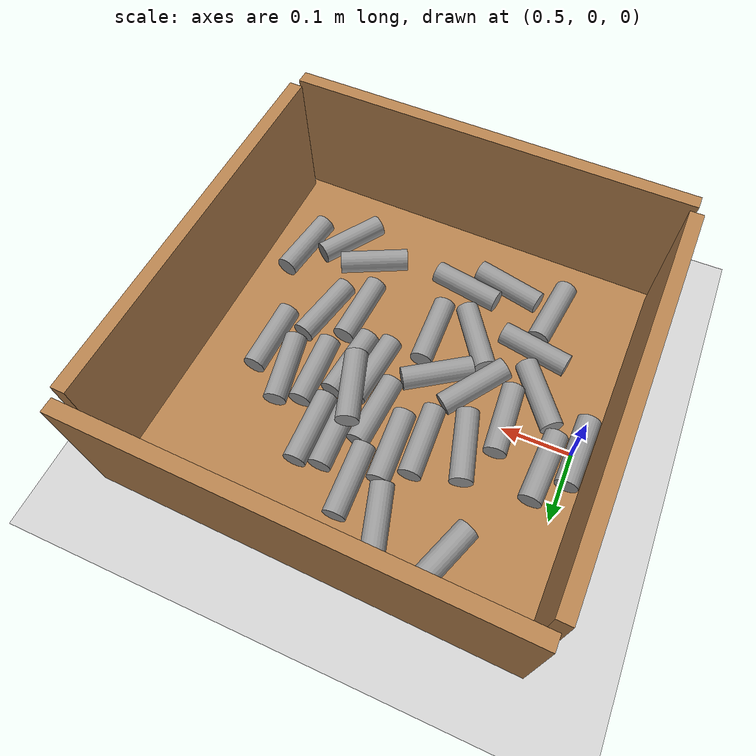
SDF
<sdf version="1.6">
 <world name="default">
  <light name="sun" type="directional">
   <pose>0 0 10 0 -0 0</pose>
   <diffuse>0.8 0.8 0.8 1</diffuse>
   <specular>0.2 0.2 0.2 1</specular>
   <attenuation>
    <range>1000</range>
    <constant>0.9</constant>
    <linear>0.01</linear>
    <quadratic>0.001</quadratic>
   </attenuation>
   <direction>-0.5 0.1 -0.9</direction>
  </light>
  <model name="ground_plane">
   <static>1</static>
   <link name="link">
    <collision name="collision">
     <geometry><plane><normal>0 0 1</normal><size>100 100</size></plane></geometry>
     <surface><friction><ode><mu>100</mu><mu2>50</mu2></ode></friction></surface>
    </collision>
    <visual name="visual">
     <cast_shadows>0</cast_shadows>
     <geometry><plane><normal>0 0 1</normal><size>100 100</size></plane></geometry>
     <material>
      <script><uri>file://media/materials/scripts/gazebo.material</uri><name>Gazebo/Grey</name></script>
     </material>
    </visual>
   </link>
  </model>
  <gravity>0 0 -9.8</gravity>
  <magnetic_field>6e-06 2.3e-05 -4.2e-05</magnetic_field>
  <atmosphere type="adiabatic"/>
  <physics name="default_physics" default="0" type="ode">
   <max_step_size>0.001</max_step_size>
   <real_time_factor>1</real_time_factor>
   <real_time_update_rate>1000</real_time_update_rate>
  </physics>
  <scene><ambient>0.1 0.1 0.1 1</ambient><background>0.7 0.7 0.7 1</background><shadows>1</shadows></scene>
  <audio><device>default</device></audio>
  <spherical_coordinates>
   <surface_model>EARTH_WGS84</surface_model>
   <latitude_deg>0</latitude_deg>
   <longitude_deg>0</longitude_deg>
   <elevation>0</elevation>
   <heading_deg>0</heading_deg>
  </spherical_coordinates>
  <model name="unit_cylinder_clone">
   <pose>0.910398 0.046588 0.033516 1.5706 -1.1739 0.178786</pose>
   <link name="link">
    <inertial>
     <mass>1</mass>
     <inertia><ixx>0.145833</ixx><ixy>0</ixy><ixz>0</ixz><iyy>0.145833</iyy><iyz>0</iyz><izz>0.125</izz></inertia>
    </inertial>
    <collision name="collision">
     <geometry><cylinder><radius>0.0163531</radius><length>0.102086</length></cylinder></geometry>
    </collision>
    <visual name="visual">
     <geometry><cylinder><radius>0.0163531</radius><length>0.102086</length></cylinder></geometry>
     <material>
      <script><name>Gazebo/Grey</name><uri>file://media/materials/scripts/gazebo.material</uri></script>
     </material>
    </visual>
   </link>
  </model>
  <model name="unit_cylinder_clone_0">
   <pose>0.710351 -0.030212 0.03347 1.56807 1.43331 2.15628</pose>
   <link name="link">
    <inertial>
     <mass>1</mass>
     <inertia><ixx>0.145833</ixx><ixy>0</ixy><ixz>0</ixz><iyy>0.145833</iyy><iyz>0</iyz><izz>0.125</izz></inertia>
    </inertial>
    <collision name="collision">
     <geometry><cylinder><radius>0.0163531</radius><length>0.102086</length></cylinder></geometry>
    </collision>
    <visual name="visual">
     <geometry><cylinder><radius>0.0163531</radius><length>0.102086</length></cylinder></geometry>
     <material>
      <script><name>Gazebo/Grey</name><uri>file://media/materials/scripts/gazebo.material</uri></script>
     </material>
    </visual>
   </link>
  </model>
  <model name="unit_cylinder_clone_1">
   <pose>0.72527 0.096784 0.033491 -1.57076 1.1276 0.048239</pose>
   <link name="link">
    <inertial>
     <mass>1</mass>
     <inertia><ixx>0.145833</ixx><ixy>0</ixy><ixz>0</ixz><iyy>0.145833</iyy><iyz>0</iyz><izz>0.125</izz></inertia>
    </inertial>
    <collision name="collision">
     <geometry><cylinder><radius>0.0163531</radius><length>0.102086</length></cylinder></geometry>
    </collision>
    <visual name="visual">
     <geometry><cylinder><radius>0.0163531</radius><length>0.102086</length></cylinder></geometry>
     <material>
      <script><name>Gazebo/Grey</name><uri>file://media/materials/scripts/gazebo.material</uri></script>
     </material>
    </visual>
   </link>
  </model>
  <model name="unit_cylinder_clone_2">
   <pose>0.680806 -0.107065 0.03348 1.57085 0.467899 -2.53252</pose>
   <link name="link">
    <inertial>
     <mass>1</mass>
     <inertia><ixx>0.145833</ixx><ixy>0</ixy><ixz>0</ixz><iyy>0.145833</iyy><iyz>0</iyz><izz>0.125</izz></inertia>
    </inertial>
    <collision name="collision">
     <geometry><cylinder><radius>0.0163531</radius><length>0.102086</length></cylinder></geometry>
    </collision>
    <visual name="visual">
     <geometry><cylinder><radius>0.0163531</radius><length>0.102086</length></cylinder></geometry>
     <material>
      <script><name>Gazebo/Grey</name><uri>file://media/materials/scripts/gazebo.material</uri></script>
     </material>
    </visual>
   </link>
  </model>
  <model name="unit_cylinder_clone_3">
   <pose>0.766483 0.057858 0.033496 1.57072 -1.13541 3.06346</pose>
   <link name="link">
    <inertial>
     <mass>1</mass>
     <inertia><ixx>0.145833</ixx><ixy>0</ixy><ixz>0</ixz><iyy>0.145833</iyy><iyz>0</iyz><izz>0.125</izz></inertia>
    </inertial>
    <collision name="collision">
     <geometry><cylinder><radius>0.0163531</radius><length>0.102086</length></cylinder></geometry>
    </collision>
    <visual name="visual">
     <geometry><cylinder><radius>0.0163531</radius><length>0.102086</length></cylinder></geometry>
     <material>
      <script><name>Gazebo/Grey</name><uri>file://media/materials/scripts/gazebo.material</uri></script>
     </material>
    </visual>
   </link>
  </model>
  <model name="unit_cylinder_clone_4">
   <pose>0.741454 -0.091622 0.033488 1.57077 0.546791 -3.10867</pose>
   <link name="link">
    <inertial>
     <mass>1</mass>
     <inertia><ixx>0.145833</ixx><ixy>0</ixy><ixz>0</ixz><iyy>0.145833</iyy><iyz>0</iyz><izz>0.125</izz></inertia>
    </inertial>
    <collision name="collision">
     <geometry><cylinder><radius>0.0163531</radius><length>0.102086</length></cylinder></geometry>
    </collision>
    <visual name="visual">
     <geometry><cylinder><radius>0.0163531</radius><length>0.102086</length></cylinder></geometry>
     <material>
      <script><name>Gazebo/Grey</name><uri>file://media/materials/scripts/gazebo.material</uri></script>
     </material>
    </visual>
   </link>
  </model>
  <model name="unit_cylinder_clone_2_clone">
   <pose>0.872199 -0.174474 0.033503 1.57108 1.13579 -1.11884</pose>
   <link name="link">
    <inertial>
     <mass>1</mass>
     <inertia><ixx>0.145833</ixx><ixy>0</ixy><ixz>0</ixz><iyy>0.145833</iyy><iyz>0</iyz><izz>0.125</izz></inertia>
    </inertial>
    <collision name="collision">
     <geometry><cylinder><radius>0.0163531</radius><length>0.102086</length></cylinder></geometry>
    </collision>
    <visual name="visual">
     <geometry><cylinder><radius>0.0163531</radius><length>0.102086</length></cylinder></geometry>
     <material>
      <script><name>Gazebo/Grey</name><uri>file://media/materials/scripts/gazebo.material</uri></script>
     </material>
    </visual>
   </link>
  </model>
  <model name="unit_cylinder_clone_2_clone_0">
   <pose>0.665598 -0.210284 0.033476 -1.57415 -1.53547 1.3522</pose>
   <link name="link">
    <inertial>
     <mass>1</mass>
     <inertia><ixx>0.145833</ixx><ixy>0</ixy><ixz>0</ixz><iyy>0.145833</iyy><iyz>0</iyz><izz>0.125</izz></inertia>
    </inertial>
    <collision name="collision">
     <geometry><cylinder><radius>0.0163531</radius><length>0.102086</length></cylinder></geometry>
    </collision>
    <visual name="visual">
     <geometry><cylinder><radius>0.0163531</radius><length>0.102086</length></cylinder></geometry>
     <material>
      <script><name>Gazebo/Grey</name><uri>file://media/materials/scripts/gazebo.material</uri></script>
     </material>
    </visual>
   </link>
  </model>
  <model name="unit_cylinder_clone_2_clone_1">
   <pose>0.59108 -0.189854 0.033467 -1.57076 0.399107 -0.127566</pose>
   <link name="link">
    <inertial>
     <mass>1</mass>
     <inertia><ixx>0.145833</ixx><ixy>0</ixy><ixz>0</ixz><iyy>0.145833</iyy><iyz>0</iyz><izz>0.125</izz></inertia>
    </inertial>
    <collision name="collision">
     <geometry><cylinder><radius>0.0163531</radius><length>0.102086</length></cylinder></geometry>
    </collision>
    <visual name="visual">
     <geometry><cylinder><radius>0.0163531</radius><length>0.102086</length></cylinder></geometry>
     <material>
      <script><name>Gazebo/Grey</name><uri>file://media/materials/scripts/gazebo.material</uri></script>
     </material>
    </visual>
   </link>
  </model>
  <model name="unit_cylinder_clone_2_clone_2">
   <pose>0.65453 -0.026393 0.041509 -1.85841 -0.966312 -0.42838</pose>
   <link name="link">
    <inertial>
     <mass>1</mass>
     <inertia><ixx>0.145833</ixx><ixy>0</ixy><ixz>0</ixz><iyy>0.145833</iyy><iyz>0</iyz><izz>0.125</izz></inertia>
    </inertial>
    <collision name="collision">
     <geometry><cylinder><radius>0.0163531</radius><length>0.102086</length></cylinder></geometry>
    </collision>
    <visual name="visual">
     <geometry><cylinder><radius>0.0163531</radius><length>0.102086</length></cylinder></geometry>
     <material>
      <script><name>Gazebo/Grey</name><uri>file://media/materials/scripts/gazebo.material</uri></script>
     </material>
    </visual>
   </link>
  </model>
  <model name="unit_cylinder_clone_2_clone_3">
   <pose>0.902755 -0.06436 0.033505 -1.57067 -0.066944 -0.225274</pose>
   <link name="link">
    <inertial>
     <mass>1</mass>
     <inertia><ixx>0.145833</ixx><ixy>0</ixy><ixz>0</ixz><iyy>0.145833</iyy><iyz>0</iyz><izz>0.125</izz></inertia>
    </inertial>
    <collision name="collision">
     <geometry><cylinder><radius>0.0163531</radius><length>0.102086</length></cylinder></geometry>
    </collision>
    <visual name="visual">
     <geometry><cylinder><radius>0.0163531</radius><length>0.102086</length></cylinder></geometry>
     <material>
      <script><name>Gazebo/Grey</name><uri>file://media/materials/scripts/gazebo.material</uri></script>
     </material>
    </visual>
   </link>
  </model>
  <model name="unit_cylinder_clone_1_clone">
   <pose>0.59991 0.001231 0.033456 -1.57054 -0.897616 0.074596</pose>
   <link name="link">
    <inertial>
     <mass>1</mass>
     <inertia><ixx>0.145833</ixx><ixy>0</ixy><ixz>0</ixz><iyy>0.145833</iyy><iyz>0</iyz><izz>0.125</izz></inertia>
    </inertial>
    <collision name="collision">
     <geometry><cylinder><radius>0.0163531</radius><length>0.102086</length></cylinder></geometry>
    </collision>
    <visual name="visual">
     <geometry><cylinder><radius>0.0163531</radius><length>0.102086</length></cylinder></geometry>
     <material>
      <script><name>Gazebo/Grey</name><uri>file://media/materials/scripts/gazebo.material</uri></script>
     </material>
    </visual>
   </link>
  </model>
  <model name="unit_cylinder_clone_1_clone_0">
   <pose>0.70104 0.198546 0.033491 1.57081 0.308554 -2.86411</pose>
   <link name="link">
    <inertial>
     <mass>1</mass>
     <inertia><ixx>0.145833</ixx><ixy>0</ixy><ixz>0</ixz><iyy>0.145833</iyy><iyz>0</iyz><izz>0.125</izz></inertia>
    </inertial>
    <collision name="collision">
     <geometry><cylinder><radius>0.0163531</radius><length>0.102086</length></cylinder></geometry>
    </collision>
    <visual name="visual">
     <geometry><cylinder><radius>0.0163531</radius><length>0.102086</length></cylinder></geometry>
     <material>
      <script><name>Gazebo/Grey</name><uri>file://media/materials/scripts/gazebo.material</uri></script>
     </material>
    </visual>
   </link>
  </model>
  <model name="unit_cylinder_clone_1_clone_1">
   <pose>0.836099 0.11491 0.033506 1.57073 0.600433 -3.12526</pose>
   <link name="link">
    <inertial>
     <mass>1</mass>
     <inertia><ixx>0.145833</ixx><ixy>0</ixy><ixz>0</ixz><iyy>0.145833</iyy><iyz>0</iyz><izz>0.125</izz></inertia>
    </inertial>
    <collision name="collision">
     <geometry><cylinder><radius>0.0163531</radius><length>0.102086</length></cylinder></geometry>
    </collision>
    <visual name="visual">
     <geometry><cylinder><radius>0.0163531</radius><length>0.102086</length></cylinder></geometry>
     <material>
      <script><name>Gazebo/Grey</name><uri>file://media/materials/scripts/gazebo.material</uri></script>
     </material>
    </visual>
   </link>
  </model>
  <model name="unit_cylinder_clone_1_clone_1_clone">
   <pose>0.530467 0.045907 0.033464 -1.57077 -0.238967 -0.052242</pose>
   <link name="link">
    <inertial>
     <mass>1</mass>
     <inertia><ixx>0.145833</ixx><ixy>0</ixy><ixz>0</ixz><iyy>0.145833</iyy><iyz>0</iyz><izz>0.125</izz></inertia>
    </inertial>
    <collision name="collision">
     <geometry><cylinder><radius>0.0163531</radius><length>0.102086</length></cylinder></geometry>
    </collision>
    <visual name="visual">
     <geometry><cylinder><radius>0.0163531</radius><length>0.102086</length></cylinder></geometry>
     <material>
      <script><name>Gazebo/Grey</name><uri>file://media/materials/scripts/gazebo.material</uri></script>
     </material>
    </visual>
   </link>
  </model>
  <model name="unit_cylinder_clone_1_clone_1_clone_0">
   <pose>0.690484 0.074177 0.033486 1.57078 0.47303 -3.09489</pose>
   <link name="link">
    <inertial>
     <mass>1</mass>
     <inertia><ixx>0.145833</ixx><ixy>0</ixy><ixz>0</ixz><iyy>0.145833</iyy><iyz>0</iyz><izz>0.125</izz></inertia>
    </inertial>
    <collision name="collision">
     <geometry><cylinder><radius>0.0163531</radius><length>0.102086</length></cylinder></geometry>
    </collision>
    <visual name="visual">
     <geometry><cylinder><radius>0.0163531</radius><length>0.102086</length></cylinder></geometry>
     <material>
      <script><name>Gazebo/Grey</name><uri>file://media/materials/scripts/gazebo.material</uri></script>
     </material>
    </visual>
   </link>
  </model>
  <model name="unit_cylinder_clone_1_clone_1_clone_1">
   <pose>0.795543 -0.001004 0.033449 1.57214 0.815485 3.02594</pose>
   <link name="link">
    <inertial>
     <mass>1</mass>
     <inertia><ixx>0.145833</ixx><ixy>0</ixy><ixz>0</ixz><iyy>0.145833</iyy><iyz>0</iyz><izz>0.125</izz></inertia>
    </inertial>
    <collision name="collision">
     <geometry><cylinder><radius>0.0163531</radius><length>0.102086</length></cylinder></geometry>
    </collision>
    <visual name="visual">
     <geometry><cylinder><radius>0.0163531</radius><length>0.102086</length></cylinder></geometry>
     <material>
      <script><name>Gazebo/Grey</name><uri>file://media/materials/scripts/gazebo.material</uri></script>
     </material>
    </visual>
   </link>
  </model>
  <model name="unit_cylinder_clone_1_clone_1_clone_2">
   <pose>0.596196 -0.121475 0.03346 1.57038 1.03287 1.39315</pose>
   <link name="link">
    <inertial>
     <mass>1</mass>
     <inertia><ixx>0.145833</ixx><ixy>0</ixy><ixz>0</ixz><iyy>0.145833</iyy><iyz>0</iyz><izz>0.125</izz></inertia>
    </inertial>
    <collision name="collision">
     <geometry><cylinder><radius>0.0163531</radius><length>0.102086</length></cylinder></geometry>
    </collision>
    <visual name="visual">
     <geometry><cylinder><radius>0.0163531</radius><length>0.102086</length></cylinder></geometry>
     <material>
      <script><name>Gazebo/Grey</name><uri>file://media/materials/scripts/gazebo.material</uri></script>
     </material>
    </visual>
   </link>
  </model>
  <model name="unit_cylinder_clone_1_clone_1_clone_3">
   <pose>0.49464 0.00796 0.033459 -1.57067 1.38004 -0.025599</pose>
   <link name="link">
    <inertial>
     <mass>1</mass>
     <inertia><ixx>0.145833</ixx><ixy>0</ixy><ixz>0</ixz><iyy>0.145833</iyy><iyz>0</iyz><izz>0.125</izz></inertia>
    </inertial>
    <collision name="collision">
     <geometry><cylinder><radius>0.0163531</radius><length>0.102086</length></cylinder></geometry>
    </collision>
    <visual name="visual">
     <geometry><cylinder><radius>0.0163531</radius><length>0.102086</length></cylinder></geometry>
     <material>
      <script><name>Gazebo/Grey</name><uri>file://media/materials/scripts/gazebo.material</uri></script>
     </material>
    </visual>
   </link>
  </model>
  <model name="unit_cylinder_clone_1_clone_1_clone_4">
   <pose>0.610531 0.20824 0.033479 1.57044 1.38892 2.7765</pose>
   <link name="link">
    <inertial>
     <mass>1</mass>
     <inertia><ixx>0.145833</ixx><ixy>0</ixy><ixz>0</ixz><iyy>0.145833</iyy><iyz>0</iyz><izz>0.125</izz></inertia>
    </inertial>
    <collision name="collision">
     <geometry><cylinder><radius>0.0163531</radius><length>0.102086</length></cylinder></geometry>
    </collision>
    <visual name="visual">
     <geometry><cylinder><radius>0.0163531</radius><length>0.102086</length></cylinder></geometry>
     <material>
      <script><name>Gazebo/Grey</name><uri>file://media/materials/scripts/gazebo.material</uri></script>
     </material>
    </visual>
   </link>
  </model>
  <model name="unit_cylinder_clone_1_clone_1_clone_5">
   <pose>0.803116 0.108286 0.033502 -1.57076 -0.892273 0.024738</pose>
   <link name="link">
    <inertial>
     <mass>1</mass>
     <inertia><ixx>0.145833</ixx><ixy>0</ixy><ixz>0</ixz><iyy>0.145833</iyy><iyz>0</iyz><izz>0.125</izz></inertia>
    </inertial>
    <collision name="collision">
     <geometry><cylinder><radius>0.0163531</radius><length>0.102086</length></cylinder></geometry>
    </collision>
    <visual name="visual">
     <geometry><cylinder><radius>0.0163531</radius><length>0.102086</length></cylinder></geometry>
     <material>
      <script><name>Gazebo/Grey</name><uri>file://media/materials/scripts/gazebo.material</uri></script>
     </material>
    </visual>
   </link>
  </model>
  <model name="unit_cylinder_clone_1_clone_1_clone_6">
   <pose>0.829538 0.003113 0.033502 1.57072 -1.07831 3.02101</pose>
   <link name="link">
    <inertial>
     <mass>1</mass>
     <inertia><ixx>0.145833</ixx><ixy>0</ixy><ixz>0</ixz><iyy>0.145833</iyy><iyz>0</iyz><izz>0.125</izz></inertia>
    </inertial>
    <collision name="collision">
     <geometry><cylinder><radius>0.0163531</radius><length>0.102086</length></cylinder></geometry>
    </collision>
    <visual name="visual">
     <geometry><cylinder><radius>0.0163531</radius><length>0.102086</length></cylinder></geometry>
     <material>
      <script><name>Gazebo/Grey</name><uri>file://media/materials/scripts/gazebo.material</uri></script>
     </material>
    </visual>
   </link>
  </model>
  <model name="unit_cylinder_clone_1_clone_1_clone_7">
   <pose>0.983185 -0.161092 0.033518 1.57075 -0.145965 2.97921</pose>
   <link name="link">
    <inertial>
     <mass>1</mass>
     <inertia><ixx>0.145833</ixx><ixy>0</ixy><ixz>0</ixz><iyy>0.145833</iyy><iyz>0</iyz><izz>0.125</izz></inertia>
    </inertial>
    <collision name="collision">
     <geometry><cylinder><radius>0.0163531</radius><length>0.102086</length></cylinder></geometry>
    </collision>
    <visual name="visual">
     <geometry><cylinder><radius>0.0163531</radius><length>0.102086</length></cylinder></geometry>
     <material>
      <script><name>Gazebo/Grey</name><uri>file://media/materials/scripts/gazebo.material</uri></script>
     </material>
    </visual>
   </link>
  </model>
  <model name="unit_cylinder_clone_1_clone_1_clone_8">
   <pose>0.635867 0.058419 0.033478 1.57081 -0.310796 -2.87403</pose>
   <link name="link">
    <inertial>
     <mass>1</mass>
     <inertia><ixx>0.145833</ixx><ixy>0</ixy><ixz>0</ixz><iyy>0.145833</iyy><iyz>0</iyz><izz>0.125</izz></inertia>
    </inertial>
    <collision name="collision">
     <geometry><cylinder><radius>0.0163531</radius><length>0.102086</length></cylinder></geometry>
    </collision>
    <visual name="visual">
     <geometry><cylinder><radius>0.0163531</radius><length>0.102086</length></cylinder></geometry>
     <material>
      <script><name>Gazebo/Grey</name><uri>file://media/materials/scripts/gazebo.material</uri></script>
     </material>
    </visual>
   </link>
  </model>
  <model name="unit_cylinder_clone_1_clone_1_clone_9">
   <pose>0.95221 0.009813 0.033516 -1.57074 1.06439 -0.027596</pose>
   <link name="link">
    <inertial>
     <mass>1</mass>
     <inertia><ixx>0.145833</ixx><ixy>0</ixy><ixz>0</ixz><iyy>0.145833</iyy><iyz>0</iyz><izz>0.125</izz></inertia>
    </inertial>
    <collision name="collision">
     <geometry><cylinder><radius>0.0163531</radius><length>0.102086</length></cylinder></geometry>
    </collision>
    <visual name="visual">
     <geometry><cylinder><radius>0.0163531</radius><length>0.102086</length></cylinder></geometry>
     <material>
      <script><name>Gazebo/Grey</name><uri>file://media/materials/scripts/gazebo.material</uri></script>
     </material>
    </visual>
   </link>
  </model>
  <model name="unit_cylinder_clone_1_clone_1_clone_10">
   <pose>0.871004 0.033018 0.033508 -1.57077 -0.495818 0.029861</pose>
   <link name="link">
    <inertial>
     <mass>1</mass>
     <inertia><ixx>0.145833</ixx><ixy>0</ixy><ixz>0</ixz><iyy>0.145833</iyy><iyz>0</iyz><izz>0.125</izz></inertia>
    </inertial>
    <collision name="collision">
     <geometry><cylinder><radius>0.0163531</radius><length>0.102086</length></cylinder></geometry>
    </collision>
    <visual name="visual">
     <geometry><cylinder><radius>0.0163531</radius><length>0.102086</length></cylinder></geometry>
     <material>
      <script><name>Gazebo/Grey</name><uri>file://media/materials/scripts/gazebo.material</uri></script>
     </material>
    </visual>
   </link>
  </model>
  <model name="unit_cylinder_clone_1_clone_1_clone_11">
   <pose>0.80302 0.051068 0.06606 -1.56019 -0.556014 0.307714</pose>
   <link name="link">
    <inertial>
     <mass>1</mass>
     <inertia><ixx>0.145833</ixx><ixy>0</ixy><ixz>0</ixz><iyy>0.145833</iyy><iyz>0</iyz><izz>0.125</izz></inertia>
    </inertial>
    <collision name="collision">
     <geometry><cylinder><radius>0.0163531</radius><length>0.102086</length></cylinder></geometry>
    </collision>
    <visual name="visual">
     <geometry><cylinder><radius>0.0163531</radius><length>0.102086</length></cylinder></geometry>
     <material>
      <script><name>Gazebo/Grey</name><uri>file://media/materials/scripts/gazebo.material</uri></script>
     </material>
    </visual>
   </link>
  </model>
  <model name="unit_cylinder_clone_1_clone_1_clone_4_clone">
   <pose>0.723963 -0.185749 0.033484 -1.57068 -0.103939 -1.74208</pose>
   <link name="link">
    <inertial>
     <mass>1</mass>
     <inertia><ixx>0.145833</ixx><ixy>0</ixy><ixz>0</ixz><iyy>0.145833</iyy><iyz>0</iyz><izz>0.125</izz></inertia>
    </inertial>
    <collision name="collision">
     <geometry><cylinder><radius>0.0163531</radius><length>0.102086</length></cylinder></geometry>
    </collision>
    <visual name="visual">
     <geometry><cylinder><radius>0.0163531</radius><length>0.102086</length></cylinder></geometry>
     <material>
      <script><name>Gazebo/Grey</name><uri>file://media/materials/scripts/gazebo.material</uri></script>
     </material>
    </visual>
   </link>
  </model>
  <model name="unit_cylinder_clone_1_clone_1_clone_4_clone_0">
   <pose>0.756706 0.161304 0.033497 -1.57052 1.50718 0.036096</pose>
   <link name="link">
    <inertial>
     <mass>1</mass>
     <inertia><ixx>0.145833</ixx><ixy>0</ixy><ixz>0</ixz><iyy>0.145833</iyy><iyz>0</iyz><izz>0.125</izz></inertia>
    </inertial>
    <collision name="collision">
     <geometry><cylinder><radius>0.0163531</radius><length>0.102086</length></cylinder></geometry>
    </collision>
    <visual name="visual">
     <geometry><cylinder><radius>0.0163531</radius><length>0.102086</length></cylinder></geometry>
     <material>
      <script><name>Gazebo/Grey</name><uri>file://media/materials/scripts/gazebo.material</uri></script>
     </material>
    </visual>
   </link>
  </model>
  <model name="unit_cylinder_clone_1_clone_1_clone_4_clone_1">
   <pose>0.923198 -0.199413 0.033509 -1.57045 -1.31065 -0.59408</pose>
   <link name="link">
    <inertial>
     <mass>1</mass>
     <inertia><ixx>0.145833</ixx><ixy>0</ixy><ixz>0</ixz><iyy>0.145833</iyy><iyz>0</iyz><izz>0.125</izz></inertia>
    </inertial>
    <collision name="collision">
     <geometry><cylinder><radius>0.0163531</radius><length>0.102086</length></cylinder></geometry>
    </collision>
    <visual name="visual">
     <geometry><cylinder><radius>0.0163531</radius><length>0.102086</length></cylinder></geometry>
     <material>
      <script><name>Gazebo/Grey</name><uri>file://media/materials/scripts/gazebo.material</uri></script>
     </material>
    </visual>
   </link>
  </model>
  <model name="unit_cylinder_clone_1_clone_1_clone_4_clone_2">
   <pose>0.568195 -0.052805 0.033479 -1.57144 1.11842 0.66009</pose>
   <link name="link">
    <inertial>
     <mass>1</mass>
     <inertia><ixx>0.145833</ixx><ixy>0</ixy><ixz>0</ixz><iyy>0.145833</iyy><iyz>0</iyz><izz>0.125</izz></inertia>
    </inertial>
    <collision name="collision">
     <geometry><cylinder><radius>0.0163531</radius><length>0.102086</length></cylinder></geometry>
    </collision>
    <visual name="visual">
     <geometry><cylinder><radius>0.0163531</radius><length>0.102086</length></cylinder></geometry>
     <material>
      <script><name>Gazebo/Grey</name><uri>file://media/materials/scripts/gazebo.material</uri></script>
     </material>
    </visual>
   </link>
  </model>
  <model name="unit_cylinder_clone_1_clone_1_clone_4_clone_3">
   <pose>0.854986 -0.084425 0.033503 1.5707 -1.25331 3.07513</pose>
   <link name="link">
    <inertial>
     <mass>1</mass>
     <inertia><ixx>0.145833</ixx><ixy>0</ixy><ixz>0</ixz><iyy>0.145833</iyy><iyz>0</iyz><izz>0.125</izz></inertia>
    </inertial>
    <collision name="collision">
     <geometry><cylinder><radius>0.0163531</radius><length>0.102086</length></cylinder></geometry>
    </collision>
    <visual name="visual">
     <geometry><cylinder><radius>0.0163531</radius><length>0.102086</length></cylinder></geometry>
     <material>
      <script><name>Gazebo/Grey</name><uri>file://media/materials/scripts/gazebo.material</uri></script>
     </material>
    </visual>
   </link>
  </model>
  <model name="my_box">
   <link name="base">
    <inertial>
     <mass>1</mass>
     <inertia><ixx>0.083</ixx><ixy>0</ixy><ixz>0</ixz><iyy>0.083</iyy><iyz>0</iyz><izz>0.083</izz></inertia>
    </inertial>
    <collision name="collision_bottom">
     <pose>0 0 -0.208 0 -0 0</pose>
     <geometry><box><size>0.58 0.58 0.019</size></box></geometry>
     <surface>
      <contact>
       <poissons_ratio>0.347</poissons_ratio>
       <elastic_modulus>8.8e+09</elastic_modulus>
       <ode><kp>100000</kp><kd>100</kd><max_vel>100</max_vel><min_depth>0.001</min_depth></ode>
      </contact>
      <friction>
       <torsional>
        <coefficient>1</coefficient>
        <use_patch_radius>0</use_patch_radius>
        <surface_radius>0.01</surface_radius>
       </torsional>
      </friction>
     </surface>
    </collision>
    <visual name="visual_bottom">
     <pose>0 0 -0.208 0 -0 0</pose>
     <geometry><box><size>0.58 0.58 0.019</size></box></geometry>
     <material>
      <script><uri>file://media/materials/scripts/gazebo.material</uri><name>Gazebo/Wood</name></script>
     </material>
    </visual>
    <collision name="collision_left">
     <pose>0 -0.29 -0.09 0 -0 0</pose>
     <geometry><box><size>0.58 0.019 0.2</size></box></geometry>
     <surface>
      <contact>
       <poissons_ratio>0.347</poissons_ratio>
       <elastic_modulus>8.8e+09</elastic_modulus>
       <ode><kp>100000</kp><kd>100</kd><max_vel>100</max_vel><min_depth>0.001</min_depth></ode>
      </contact>
      <friction>
       <torsional>
        <coefficient>1</coefficient>
        <use_patch_radius>0</use_patch_radius>
        <surface_radius>0.01</surface_radius>
       </torsional>
      </friction>
     </surface>
    </collision>
    <visual name="visual_left">
     <pose>0 -0.29 -0.09 0 -0 0</pose>
     <geometry><box><size>0.58 0.019 0.2</size></box></geometry>
     <material>
      <script><uri>file://media/materials/scripts/gazebo.material</uri><name>Gazebo/Wood</name></script>
     </material>
    </visual>
    <collision name="collision_right">
     <pose>0 0.29 -0.09 0 -0 0</pose>
     <geometry><box><size>0.58 0.019 0.2</size></box></geometry>
     <surface>
      <contact>
       <poissons_ratio>0.347</poissons_ratio>
       <elastic_modulus>8.8e+09</elastic_modulus>
       <ode><kp>100000</kp><kd>100</kd><max_vel>100</max_vel><min_depth>0.001</min_depth></ode>
      </contact>
      <friction>
       <torsional>
        <coefficient>1</coefficient>
        <use_patch_radius>0</use_patch_radius>
        <surface_radius>0.01</surface_radius>
       </torsional>
      </friction>
     </surface>
    </collision>
    <visual name="visual_right">
     <pose>0 0.29 -0.09 0 -0 0</pose>
     <geometry><box><size>0.58 0.019 0.2</size></box></geometry>
     <material>
      <script><uri>file://media/materials/scripts/gazebo.material</uri><name>Gazebo/Wood</name></script>
     </material>
    </visual>
    <collision name="collision_a">
     <pose>0.29 0 -0.09 0 -0 0</pose>
     <geometry><box><size>0.019 0.542 0.2</size></box></geometry>
     <surface>
      <contact>
       <poissons_ratio>0.347</poissons_ratio>
       <elastic_modulus>8.8e+09</elastic_modulus>
       <ode><kp>100000</kp><kd>100</kd><max_vel>100</max_vel><min_depth>0.001</min_depth></ode>
      </contact>
      <friction>
       <torsional>
        <coefficient>1</coefficient>
        <use_patch_radius>0</use_patch_radius>
        <surface_radius>0.01</surface_radius>
       </torsional>
      </friction>
     </surface>
    </collision>
    <visual name="visual_a">
     <pose>0.29 0 -0.09 0 -0 0</pose>
     <geometry><box><size>0.019 0.542 0.2</size></box></geometry>
     <material>
      <script><uri>file://media/materials/scripts/gazebo.material</uri><name>Gazebo/Wood</name></script>
     </material>
    </visual>
    <collision name="collision_b">
     <pose>-0.29 0 -0.09 0 -0 0</pose>
     <geometry><box><size>0.019 0.542 0.2</size></box></geometry>
     <surface>
      <contact>
       <poissons_ratio>0.347</poissons_ratio>
       <elastic_modulus>8.8e+09</elastic_modulus>
       <ode><kp>100000</kp><kd>100</kd><max_vel>100</max_vel><min_depth>0.001</min_depth></ode>
      </contact>
      <friction>
       <torsional>
        <coefficient>1</coefficient>
        <use_patch_radius>0</use_patch_radius>
        <surface_radius>0.01</surface_radius>
       </torsional>
      </friction>
     </surface>
    </collision>
    <visual name="visual_b">
     <pose>-0.29 0 -0.09 0 -0 0</pose>
     <geometry><box><size>0.019 0.542 0.2</size></box></geometry>
     <material>
      <script><uri>file://media/materials/scripts/gazebo.material</uri><name>Gazebo/Wood</name></script>
     </material>
    </visual>
   </link>
   <pose>0.757286 -0.010749 0.215689 2.7e-05 -0.000128 -0.023557</pose>
  </model>
 </world>
</sdf>
